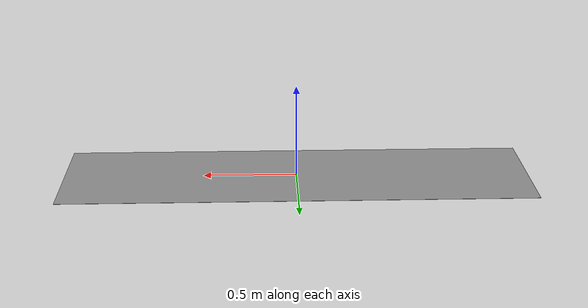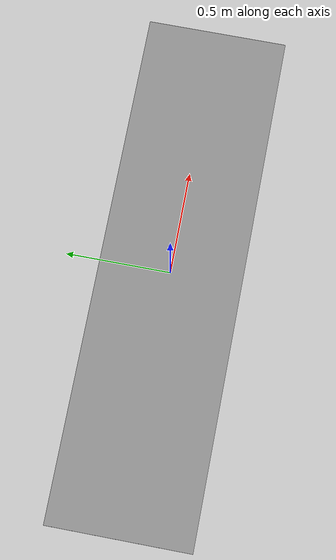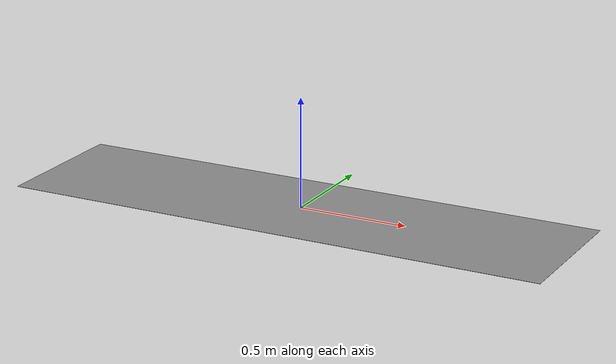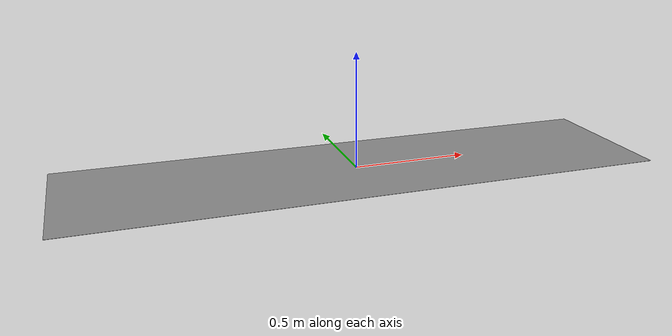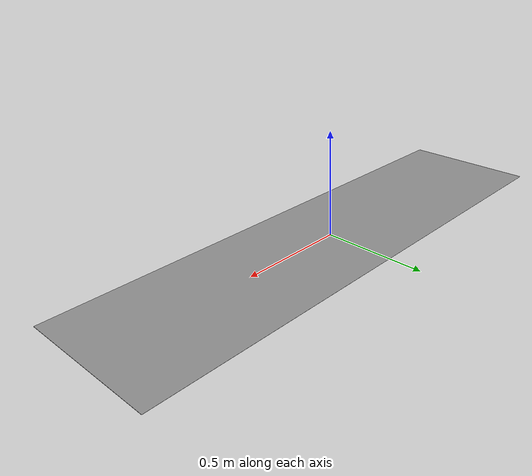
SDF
<sdf version="1.4">
  <model name="box">
    <static>1</static>
    <link name="link">
      <collision name="colision">
        <pose>0 0 0 0 0 0</pose>
        <geometry>
          <box>
            <size>2.5 0.68 0.001</size>
          </box>
        </geometry>
        <surface>
          <bounce />
          <friction>
            <ode />
          </friction>
          <contact>
            <ode />
          </contact>
        </surface>
      </collision>

      <visual name="visual">
        <pose>0 0 0 0 0 0</pose>
        <geometry>
          <box>
            <size>2.5 0.68 0.001</size>
          </box>
        </geometry>
        <material>
          <script>
            <uri>file://media/materials/scripts/gazebo.material</uri>
            <name>Gazebo/Grey</name>
          </script>
        </material>
      </visual>
    </link>
  </model>
</sdf>
